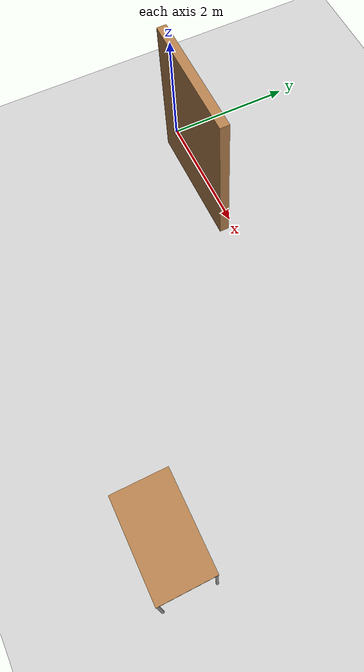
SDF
<sdf version="1.7">
 <world name="default">
  <plugin name="gazebo_ros_api_plugin" filename="libgazebo_ros_api_plugin.so"/>
  <model name="ground_plane">
   <static>1</static>
   <link name="link">
    <collision name="collision">
     <geometry><plane><normal>0 0 1</normal><size>100 100</size></plane></geometry>
     <surface><friction><ode><mu>100</mu><mu2>50</mu2></ode></friction></surface>
    </collision>
    <visual name="visual">
     <cast_shadows>0</cast_shadows>
     <geometry><plane><normal>0 0 1</normal><size>100 100</size></plane></geometry>
     <material>
      <script><uri>file://media/materials/scripts/gazebo.material</uri><name>Gazebo/Grey</name></script>
     </material>
    </visual>
   </link>
  </model>
  <light name="sun" type="directional">
   <pose>0 0 10 0 -0 0</pose>
   <diffuse>0.8 0.8 0.8 1</diffuse>
   <specular>0.2 0.2 0.2 1</specular>
   <attenuation>
    <range>1000</range>
    <constant>0.9</constant>
    <linear>0.01</linear>
    <quadratic>0.001</quadratic>
   </attenuation>
   <direction>-0.5 0.1 -0.9</direction>
   <spot><inner_angle>0</inner_angle><outer_angle>0</outer_angle><falloff>0</falloff></spot>
  </light>
  <scene><shadows>0</shadows><ambient>0.4 0.4 0.4 1</ambient><background>0.7 0.7 0.7 1</background></scene>
  <physics type="ode">
   <real_time_update_rate>1000</real_time_update_rate>
   <max_step_size>0.001</max_step_size>
   <real_time_factor>1</real_time_factor>
   <ode>
    <solver>
     <type>quick</type>
     <iters>150</iters>
     <precon_iters>0</precon_iters>
     <sor>1.4</sor>
     <use_dynamic_moi_rescaling>1</use_dynamic_moi_rescaling>
    </solver>
    <constraints>
     <cfm>1e-05</cfm>
     <erp>0.2</erp>
     <contact_max_correcting_vel>2000</contact_max_correcting_vel>
     <contact_surface_layer>0.01</contact_surface_layer>
    </constraints>
   </ode>
  </physics>
  <gravity>0 0 -9.8</gravity>
  <magnetic_field>6e-06 2.3e-05 -4.2e-05</magnetic_field>
  <atmosphere type="adiabatic"/>
  <audio><device>default</device></audio>
  <spherical_coordinates>
   <surface_model>EARTH_WGS84</surface_model>
   <latitude_deg>0</latitude_deg>
   <longitude_deg>0</longitude_deg>
   <elevation>0</elevation>
   <heading_deg>0</heading_deg>
  </spherical_coordinates>
  <model name="turtlebot3_house::table_clone">
   <static>0</static>
   <link name="link">
    <collision name="surface">
     <pose>0 0 1 0 -0 0</pose>
     <geometry><box><size>1.5 0.8 0.03</size></box></geometry>
     <surface><friction><ode><mu>0.6</mu><mu2>0.6</mu2></ode></friction></surface>
    </collision>
    <visual name="visual1">
     <pose>0 0 1 0 -0 0</pose>
     <geometry><box><size>1.4 0.8 0.04</size></box></geometry>
     <material>
      <script><uri>file://media/materials/scripts/gazebo.material</uri><name>Gazebo/Wood</name></script>
     </material>
    </visual>
    <collision name="front_left_leg">
     <pose>0.68 0.38 0.5 0 -0 0</pose>
     <geometry><cylinder><radius>0.02</radius><length>1</length></cylinder></geometry>
    </collision>
    <visual name="front_left_leg">
     <pose>0.68 0.38 0.5 0 -0 0</pose>
     <geometry><cylinder><radius>0.02</radius><length>1</length></cylinder></geometry>
     <material>
      <script><uri>file://media/materials/scripts/gazebo.material</uri><name>Gazebo/Grey</name></script>
     </material>
    </visual>
    <collision name="front_right_leg">
     <pose>0.68 -0.38 0.5 0 -0 0</pose>
     <geometry><cylinder><radius>0.02</radius><length>1</length></cylinder></geometry>
    </collision>
    <visual name="front_right_leg">
     <pose>0.68 -0.38 0.5 0 -0 0</pose>
     <geometry><cylinder><radius>0.02</radius><length>1</length></cylinder></geometry>
     <material>
      <script><uri>file://media/materials/scripts/gazebo.material</uri><name>Gazebo/Grey</name></script>
     </material>
    </visual>
    <collision name="back_right_leg">
     <pose>-0.68 -0.38 0.5 0 -0 0</pose>
     <geometry><cylinder><radius>0.02</radius><length>1</length></cylinder></geometry>
    </collision>
    <visual name="back_right_leg">
     <pose>-0.68 -0.38 0.5 0 -0 0</pose>
     <geometry><cylinder><radius>0.02</radius><length>1</length></cylinder></geometry>
     <material>
      <script><uri>file://media/materials/scripts/gazebo.material</uri><name>Gazebo/Grey</name></script>
     </material>
    </visual>
    <collision name="back_left_leg">
     <pose>-0.68 0.38 0.5 0 -0 0</pose>
     <geometry><cylinder><radius>0.02</radius><length>1</length></cylinder></geometry>
    </collision>
    <visual name="back_left_leg">
     <pose>-0.68 0.38 0.5 0 -0 0</pose>
     <geometry><cylinder><radius>0.02</radius><length>1</length></cylinder></geometry>
     <material>
      <script><uri>file://media/materials/scripts/gazebo.material</uri><name>Gazebo/Grey</name></script>
     </material>
    </visual>
    <inertial>
     <inertia><ixx>1</ixx><ixy>0</ixy><ixz>0</ixz><iyy>1</iyy><iyz>0</iyz><izz>1</izz></inertia>
     <mass>1</mass>
    </inertial>
   </link>
   <pose relative_to="turtlebot3_house::__model__">6.15569 -2.97817 -9e-06 -0 -1e-06 0.000211</pose>
  </model>
  <model name="Untitled">
   <pose>1.07173 -0.117394 0 0 -0 0</pose>
   <link name="Wall_5">
    <collision name="Wall_5_Collision">
     <geometry><box><size>2 0.15 2.5</size></box></geometry>
     <pose>0 0 1.25 0 -0 0</pose>
    </collision>
    <visual name="Wall_5_Visual">
     <pose>0 0 1.25 0 -0 0</pose>
     <geometry><box><size>2 0.15 2.5</size></box></geometry>
     <material>
      <script><uri>file://media/materials/scripts/gazebo.material</uri><name>Gazebo/Wood</name></script>
      <ambient>1 1 1 1</ambient>
     </material>
     <meta><layer>0</layer></meta>
    </visual>
    <pose>0.07173 -0.042394 0 0 -0 0</pose>
   </link>
   <static>1</static>
  </model>
 </world>
</sdf>
